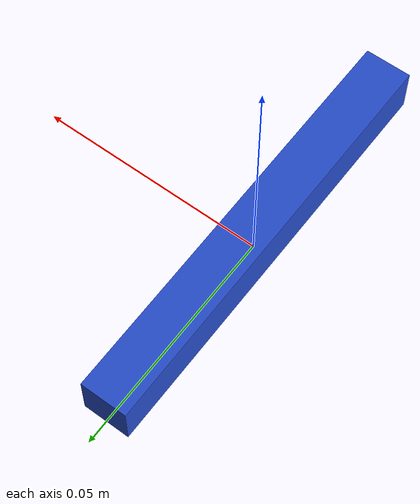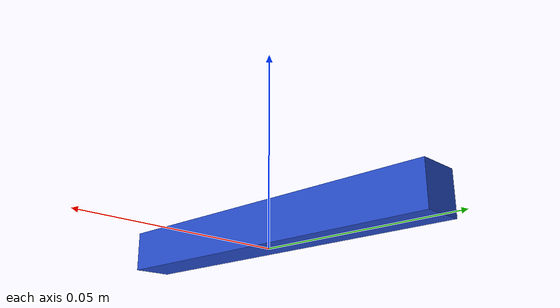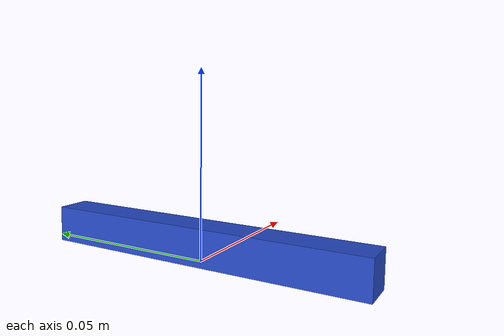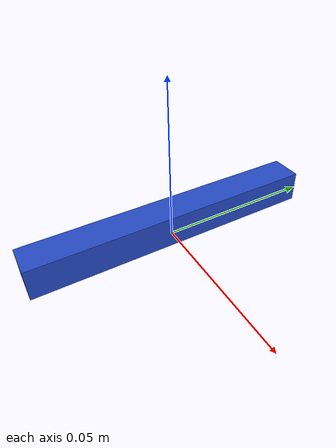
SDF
<?xml version="1.0" ?>
<sdf version="1.6">
  <model name="mathstick9">
    <static>false</static>
    <link name="link">
      <collision name="collision">
        <geometry>
          <mesh>
            <uri>model://mathstick9/meshes/MathStick9.stl</uri>
            <scale>0.001 0.001 0.001</scale>
          </mesh>
        </geometry>
        <surface>
          <friction>
            <ode>
              <mu>100.0</mu> <!-- High coefficient of friction -->
              <mu2>100.0</mu2> <!-- High coefficient of friction -->
            </ode>
          </friction>
        </surface>
      </collision>
      <visual name="visual">
        <geometry>
          <mesh>
            <uri>model://mathstick9/meshes/MathStick9.stl</uri>
            <scale>0.001 0.001 0.001</scale>
          </mesh>
        </geometry>
        <material>
          <script>
            <uri>file://media/materials/scripts/gazebo.material</uri>
            <name>Gazebo/Blue</name> <!-- Change this to the desired color -->
          </script>
        </material>
      </visual>
      <inertial>
        <mass>0.045</mass>
        <inertia>
          <ixx>0.00003075</ixx>
          <ixy>0.0</ixy>
          <ixz>0.0</ixz>
          <iyy>0.00000075</iyy>
          <iyz>0.0</iyz>
          <izz>0.00003075</izz>
        </inertia>
      </inertial>
    </link>
  </model>
</sdf>
